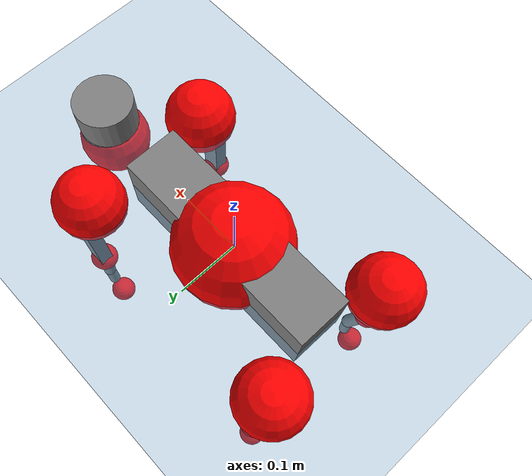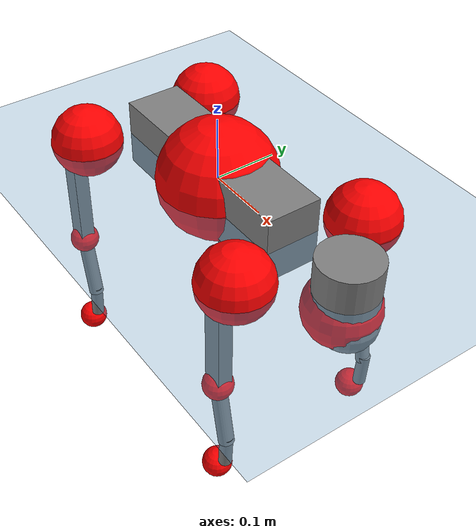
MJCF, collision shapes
<mujoco model="go2">
  <compiler angle="radian" assetdir="assets" balanceinertia="true" inertiafromgeom="false"/>

  <option timestep="0.005" density="1.2" viscosity="2e-05"/>

  <size nkey="1"/>

  <visual>
    <quality shadowsize="8192"/>
    <map shadowclip="0.5"/>
  </visual>

  <default>
    <default class="/">
      <geom contype="0" conaffinity="0" group="1" solref="-1000 -80"/>
      <site size="0.01 0.005 0.005" group="5"/>
      <general forcelimited="true" biastype="affine" gainprm="20" biasprm="0 -20 -0.5"/>
      <default class="go2">
        <joint armature="0.01" damping="0.01" frictionloss="0.2"/>
        <geom condim="1" margin="0.001"/>
        <default class="visual">
          <geom type="mesh" group="2"/>
        </default>
        <default class="collision">
          <geom group="3"/>
          <default class="foot">
            <geom size="0.022 0 0" condim="6" priority="1" friction="0.8 0.02 0.01" solimp="0.015 1 0.022"/>
          </default>
        </default>
        <default class="reward_collision_sphere">
          <geom group="5" rgba="1 0 0 1"/>
        </default>
      </default>
    </default>
  </default>

  <asset>
    <texture type="skybox" colorspace="auto" name="//unnamed_texture_0" builtin="gradient" rgb1="0.95 0.95 0.95" rgb2="0.95 0.95 0.95" width="100" height="600"/>
    <texture type="2d" colorspace="auto" name="texplane" builtin="checker" rgb1="0.345 0.575 0.748" rgb2="0.345 0.575 0.748" markrgb="1 1 1" width="512" height="512"/>
    <material name="MatPlane" class="/" texture="texplane" texuniform="true" texrepeat="2 2" specular="0.9"/>
    <material name="metal" class="/" rgba="0.9 0.95 0.95 1"/>
    <material name="black" class="/" rgba="0 0 0 1"/>
    <material name="white" class="/"/>
    <material name="gray" class="/" rgba="0.671705 0.692426 0.77427 1"/>
    <mesh name="base_0" class="/" file="base_0.obj"/>
    <mesh name="base_1" class="/" file="base_1.obj"/>
    <mesh name="base_2" class="/" file="base_2.obj"/>
    <mesh name="base_3" class="/" file="base_3.obj"/>
    <mesh name="base_4" class="/" file="base_4.obj"/>
    <mesh name="hip_0" class="/" file="hip_0.obj"/>
    <mesh name="hip_1" class="/" file="hip_1.obj"/>
    <mesh name="thigh_0" class="/" file="thigh_0.obj"/>
    <mesh name="thigh_1" class="/" file="thigh_1.obj"/>
    <mesh name="thigh_mirror_0" class="/" file="thigh_mirror_0.obj"/>
    <mesh name="thigh_mirror_1" class="/" file="thigh_mirror_1.obj"/>
    <mesh name="calf_0" class="/" file="calf_0.obj"/>
    <mesh name="calf_1" class="/" file="calf_1.obj"/>
    <mesh name="calf_mirror_0" class="/" file="calf_mirror_0.obj"/>
    <mesh name="calf_mirror_1" class="/" file="calf_mirror_1.obj"/>
    <mesh name="foot" class="/" file="foot.obj"/>
  </asset>

  <worldbody>
    <geom name="floor" class="/" size="100 100 0.125" type="plane" group="0" material="MatPlane"/>
    <light name="toplight_shadow" class="/" pos="0 0 5" dir="0.0990148 0.0990148 -0.990148" type="directional" ambient="0.04 0.04 0.04" diffuse="0.55 0.55 0.55" specular="0.12 0.12 0.12"/>
    <light name="toplight_fill" class="/" pos="0 0 5" dir="0.0990148 0.0990148 -0.990148" type="directional" castshadow="false" ambient="0.04 0.04 0.04" diffuse="0.3 0.3 0.3" specular="0.08 0.08 0.08"/>
    <body name="trunk" childclass="go2" pos="0.0014398 0.000112949 0.000941203" quat="1 -0.000382828 -0.000249116 4.86576e-05">
      <inertial pos="0.0198174 -0.00114473 -0.00503083" quat="0.000495202 0.711944 -0.00163125 0.702234" mass="5.42016" diaginertia="0.107272 0.0732226 0.0103929"/>
      <joint name="//unnamed_joint_0" type="free" armature="0" damping="0" frictionloss="0"/>
      <geom name="//unnamed_geom_1" class="visual" material="black" mesh="base_0"/>
      <geom name="//unnamed_geom_2" class="visual" material="black" mesh="base_1"/>
      <geom name="//unnamed_geom_3" class="visual" material="black" mesh="base_2"/>
      <geom name="//unnamed_geom_4" class="visual" material="white" mesh="base_3"/>
      <geom name="//unnamed_geom_5" class="visual" material="gray" mesh="base_4"/>
      <geom name="trunk_1" class="collision" size="0.175085 0.0435153 0.0530561" type="box"/>
      <geom name="trunk_2" class="collision" size="0.0465404 0.0418864" pos="0.285598 0 0.00845467" type="cylinder"/>
      <geom name="trunk_3" class="collision" size="0.043748" pos="0.293615 0 -0.050728"/>
      <geom name="//unnamed_geom_9" class="reward_collision_sphere" size="0.0930808"/>
      <geom name="//unnamed_geom_10" class="reward_collision_sphere" size="0.0558485" pos="0.280587 0 -0.038046"/>
      <site name="imu" pos="-0.0257559 -0.00453725 0.0394908" size="0.00930808"/>
      <camera name="track" pos="0 -1.88972 0" quat="0.707107 0.707107 0 0" mode="trackcom"/>
      <camera name="ego_camera" pos="0.312655 0 0.038046" quat="-0.5 -0.5 0.5 0.5"/>
      <body name="FL_hip" pos="0.192998 0.0435478 0.00112364" quat="1 -0.000478148 8.88879e-05 -2.36684e-05">
        <inertial pos="-0.00522034 0.00241927 -0.000858861" quat="0.497745 0.499556 0.505084 0.497578" mass="0.555242" diaginertia="0.000913121 0.000445203 0.000207075"/>
        <joint name="FL_hip_joint" pos="0 0 0" axis="0.999923 -0.0108729 -0.0060239" stiffness="0.00415278" range="-1.02313 1.04221" armature="0.00925501" damping="0" frictionloss="0.184795"/>
        <geom name="//unnamed_geom_11" class="visual" material="metal" mesh="hip_0"/>
        <geom name="//unnamed_geom_12" class="visual" material="gray" mesh="hip_1"/>
        <geom name="//unnamed_geom_13" class="collision" size="0.0428172 0.0186162" pos="0 0.0755887 0" quat="0.707107 0.707107 0 0" type="cylinder"/>
        <geom name="//unnamed_geom_14" class="reward_collision_sphere" size="0.0558485" pos="0 0.0661401 0"/>
        <body name="FL_thigh" pos="-0.00146417 0.0897125 0.00158229" quat="1 1.62004e-05 -6.1164e-05 8.13461e-05">
          <inertial pos="-0.00433167 -0.0202712 -0.0283234" quat="0.829569 0.0848241 -0.0199517 0.551563" mass="0.934952" diaginertia="0.00596321 0.00441109 0.000388521"/>
          <joint name="FL_thigh_joint" pos="0 0 0" axis="0.00561555 0.999976 0.00414442" range="-1.58733 3.49111" armature="0.00957409" damping="0.0039292" frictionloss="0.191734"/>
          <geom name="//unnamed_geom_15" class="visual" material="metal" mesh="thigh_0"/>
          <geom name="//unnamed_geom_16" class="visual" material="gray" mesh="thigh_1"/>
          <geom name="//unnamed_geom_17" class="collision" size="0.0991311 0.0114024 0.0158237" pos="0 0 -0.0900423" quat="0.707107 0 0.707107 0" type="box"/>
          <body name="FL_calf" pos="-0.000260856 -0.00177737 -0.180372" quat="1 -0.000130123 -1.93947e-05 -0.000370836">
            <inertial pos="0.00620298 -0.000516609 -0.119519" quat="0.712444 0.0043451 -0.00514624 0.701696" mass="0.194739" diaginertia="0.00155069 0.00111413 2.33191e-05"/>
            <joint name="FL_calf_joint" pos="0 0 0" axis="0.000209714 0.999997 0.00252739" range="-2.74286 -0.838808" armature="0.00890929" damping="0.00152795" frictionloss="0.177603"/>
            <geom name="//unnamed_geom_18" class="visual" material="gray" mesh="calf_0"/>
            <geom name="//unnamed_geom_19" class="visual" material="black" mesh="calf_1"/>
            <geom name="FL_calf0" class="collision" size="0.0111697 0.0558485" pos="0.00801679 0 -0.050728" quat="0.994493 0 -0.104807 0" type="cylinder"/>
            <geom name="//unnamed_geom_21" class="collision" size="0.0102389 0.0302513" pos="0.020042 0 -0.125129" quat="0.999688 0 0.0249974 0" type="cylinder"/>
            <geom name="//unnamed_geom_22" class="visual" pos="0 0 -0.180085" quat="1 0 0 0" material="black" mesh="foot"/>
            <geom name="FL_foot" class="foot" size="0.0172224" pos="-0.0020042 0 -0.180085"/>
            <geom name="//unnamed_geom_24" class="reward_collision_sphere" size="0.0232702"/>
            <geom name="//unnamed_geom_25" class="reward_collision_sphere" size="0.0232702" pos="-0.0020042 0 -0.180085"/>
            <site name="FL_foot" class="foot" pos="-0.0020042 0 -0.180085" size="0.00930808"/>
          </body>
        </body>
      </body>
      <body name="FR_hip" pos="0.194976 -0.0436273 -0.00105539" quat="1 1.42395e-05 -2.31546e-05 -5.37348e-05">
        <inertial pos="-0.00612219 -0.00229571 -0.000232016" quat="0.498719 0.504809 0.498594 0.497846" mass="0.546481" diaginertia="0.000905413 0.00045354 0.000211333"/>
        <joint name="FR_hip_joint" pos="0 0 0" axis="0.999999 -0.00102787 0.000461891" stiffness="0.00547201" range="-1.06135 1.05097" armature="0.00920348" damping="0.0156378" frictionloss="0.182974"/>
        <geom name="//unnamed_geom_26" class="visual" pos="0 8.65856e-10 3.71383e-08" quat="4.63268e-05 1 0 0" material="metal" mesh="hip_0"/>
        <geom name="//unnamed_geom_27" class="visual" pos="0 1.40366e-09 -9.18573e-08" quat="4.63268e-05 1 0 0" material="gray" mesh="hip_1"/>
        <geom name="//unnamed_geom_28" class="collision" size="0.0428172 0.0186162" pos="0 -0.0755887 0" quat="0.707107 0.707107 0 0" type="cylinder"/>
        <geom name="//unnamed_geom_29" class="reward_collision_sphere" size="0.0558485" pos="0 -0.0661401 0"/>
        <body name="FR_thigh" pos="0.000551078 -0.0919028 0.000361314" quat="1 -1.8301e-05 0.000126806 -1.51335e-05">
          <inertial pos="-0.00453926 0.021294 -0.0276113" quat="0.550919 -0.0182951 0.0823664 0.830283" mass="0.931507" diaginertia="0.00607438 0.00447564 0.000385359"/>
          <joint name="FR_thigh_joint" pos="0 0 0" axis="-0.00364849 -0.999991 -0.00205251" stiffness="0.000932543" range="-3.5013 1.5714" armature="0.00924371" damping="0.0128825" frictionloss="0.177816"/>
          <geom name="//unnamed_geom_30" class="visual" material="metal" mesh="thigh_mirror_0"/>
          <geom name="//unnamed_geom_31" class="visual" material="gray" mesh="thigh_mirror_1"/>
          <geom name="//unnamed_geom_32" class="collision" size="0.0991311 0.0114024 0.0158237" pos="0 0 -0.0900423" quat="0.707107 0 0.707107 0" type="box"/>
          <body name="FR_calf" pos="-0.000271217 -0.00085766 -0.178894" quat="1 1.37216e-05 -5.03293e-05 -2.21067e-05">
            <inertial pos="0.00625229 0.000625328 -0.119784" quat="0.705364 -0.00374344 -0.000380141 0.708835" mass="0.195256" diaginertia="0.0015026 0.00110053 2.3034e-05"/>
            <joint name="FR_calf_joint" pos="0 0 0" axis="0.00461336 -0.999985 -0.00284379" range="0.83381 2.71544" armature="0.00956123" damping="0.00925664" frictionloss="0.193892"/>
            <geom name="//unnamed_geom_33" class="visual" material="gray" mesh="calf_mirror_0"/>
            <geom name="//unnamed_geom_34" class="visual" material="black" mesh="calf_mirror_1"/>
            <geom name="FR_calf0" class="collision" size="0.0121005 0.0558485" pos="0.010021 0 -0.050728" quat="0.995004 0 -0.0998334 0" type="cylinder"/>
            <geom name="//unnamed_geom_36" class="collision" size="0.0102389 0.0302513" pos="0.020042 0 -0.125129" quat="0.999688 0 0.0249974 0" type="cylinder"/>
            <geom name="//unnamed_geom_37" class="visual" pos="0 0 -0.180085" quat="1 0 0 0" material="black" mesh="foot"/>
            <geom name="FR_foot" class="foot" size="0.022959" pos="-0.0020042 0 -0.180085"/>
            <geom name="//unnamed_geom_39" class="reward_collision_sphere" size="0.0232702"/>
            <geom name="//unnamed_geom_40" class="reward_collision_sphere" size="0.0232702" pos="-0.0020042 0 -0.180085"/>
            <site name="FR_foot" class="foot" pos="-0.0020042 0 -0.180085" size="0.00930808"/>
          </body>
        </body>
      </body>
      <body name="RL_hip" pos="-0.193513 0.0440051 1.172e-05" quat="1 2.8532e-07 2.85197e-07 -2.81732e-07">
        <inertial pos="0.00479607 0.00335183 0.000390116" quat="0.499317 0.502852 0.497894 0.499924" mass="0.556085" diaginertia="0.000898229 0.000451858 0.000210258"/>
        <joint name="RL_hip_joint" pos="0 0 0" axis="-0.999802 -0.00622984 0.0189175" range="-1.0562 1.06231" armature="0.00922489" damping="0.0174318" frictionloss="0.192071"/>
        <geom name="//unnamed_geom_41" class="visual" pos="-1.3645e-09 0 -2.67474e-07" quat="4.63268e-05 0 1 0" material="metal" mesh="hip_0"/>
        <geom name="//unnamed_geom_42" class="visual" pos="-2.21202e-09 0 -2.37211e-07" quat="4.63268e-05 0 1 0" material="gray" mesh="hip_1"/>
        <geom name="//unnamed_geom_43" class="collision" size="0.0428172 0.0186162" pos="0 0.0755887 0" quat="0.707107 0.707107 0 0" type="cylinder"/>
        <geom name="//unnamed_geom_44" class="reward_collision_sphere" size="0.0558485" pos="0 0.0661401 0"/>
        <body name="RL_thigh" pos="0.000111369 0.0894172 0.000320799" quat="1 -6.92957e-05 2.17256e-05 0.000207406">
          <inertial pos="-0.00367081 -0.0206781 -0.0272901" quat="0.828806 0.087681 -0.0201211 0.552256" mass="0.941414" diaginertia="0.0059832 0.00442313 0.000376354"/>
          <joint name="RL_thigh_joint" pos="0 0 0" axis="8.64252e-05 0.999999 0.00131813" stiffness="0.00182382" range="-0.525817 4.53532" armature="0.0092036" damping="0.0129488" frictionloss="0.185751"/>
          <geom name="//unnamed_geom_45" class="visual" material="metal" mesh="thigh_0"/>
          <geom name="//unnamed_geom_46" class="visual" material="gray" mesh="thigh_1"/>
          <geom name="//unnamed_geom_47" class="collision" size="0.0991311 0.0114024 0.0158237" pos="0 0 -0.0900423" quat="0.707107 0 0.707107 0" type="box"/>
          <body name="RL_calf" pos="0.000117096 -0.000405051 -0.181272" quat="1 0.000184297 -0.000132827 -6.57848e-05">
            <inertial pos="0.00686598 0.00087975 -0.119698" quat="0.710446 0.00569525 -0.0065623 0.703698" mass="0.19337" diaginertia="0.00151342 0.00109195 2.24297e-05"/>
            <joint name="RL_calf_joint" pos="0 0 0" axis="-0.00467244 0.999984 -0.00331234" range="-2.72436 -0.854405" armature="0.00892037" damping="0.00771982" frictionloss="0.197512"/>
            <geom name="//unnamed_geom_48" class="visual" material="gray" mesh="calf_0"/>
            <geom name="//unnamed_geom_49" class="visual" material="black" mesh="calf_1"/>
            <geom name="RL_calf0" class="collision" size="0.0121005 0.0558485" pos="0.010021 0 -0.050728" quat="0.995004 0 -0.0998334 0" type="cylinder"/>
            <geom name="//unnamed_geom_51" class="collision" size="0.0102389 0.0302513" pos="0.020042 0 -0.125129" quat="0.999688 0 0.0249974 0" type="cylinder"/>
            <geom name="//unnamed_geom_52" class="visual" pos="0 0 -0.180085" quat="1 0 0 0" material="black" mesh="foot"/>
            <geom name="RL_foot" class="foot" size="0.0175285" pos="-0.0020042 0 -0.180085"/>
            <geom name="//unnamed_geom_54" class="reward_collision_sphere" size="0.0232702"/>
            <geom name="//unnamed_geom_55" class="reward_collision_sphere" size="0.0232702" pos="-0.0020042 0 -0.180085"/>
            <site name="RL_foot" class="foot" pos="-0.0020042 0 -0.180085" size="0.00930808"/>
          </body>
        </body>
      </body>
      <body name="RR_hip" pos="-0.194498 -0.0433273 -9.26024e-05" quat="1 -0.000543663 -0.000164451 0.000383719">
        <inertial pos="0.00642344 -0.00211501 -0.00105785" quat="0.49812 0.496213 0.498369 0.507225" mass="0.545676" diaginertia="0.000891863 0.00044964 0.000206731"/>
        <joint name="RR_hip_joint" pos="0 0 0" axis="-0.99997 0.00720937 -0.00275274" range="-1.06164 1.05597" armature="0.00975238" damping="0.0091357" frictionloss="0.190514"/>
        <geom name="//unnamed_geom_56" class="visual" pos="1.36252e-09 8.65856e-10 -3.04612e-07" quat="2.14617e-09 4.63268e-05 4.63268e-05 -1" material="metal" mesh="hip_0"/>
        <geom name="//unnamed_geom_57" class="visual" pos="2.21692e-09 1.40366e-09 -1.45354e-07" quat="2.14617e-09 4.63268e-05 4.63268e-05 -1" material="gray" mesh="hip_1"/>
        <geom name="//unnamed_geom_58" class="collision" size="0.0428172 0.0186162" pos="0 -0.0755887 0" quat="0.707107 0.707107 0 0" type="cylinder"/>
        <geom name="//unnamed_geom_59" class="reward_collision_sphere" size="0.0558485" pos="0 -0.0661401 0"/>
        <body name="RR_thigh" pos="-0.000188301 -0.0908003 -0.00269577" quat="1 2.2226e-05 1.18773e-06 1.87543e-05">
          <inertial pos="-0.00407844 0.0212819 -0.0277006" quat="0.551947 -0.0193227 0.0849083 0.82932" mass="0.925288" diaginertia="0.00597935 0.00436851 0.000379627"/>
          <joint name="RR_thigh_joint" pos="0 0 0" axis="-0.00689265 -0.999972 0.00274385" range="-4.54026 0.53431" armature="0.00919598" damping="0.0129654" frictionloss="0.190344"/>
          <geom name="//unnamed_geom_60" class="visual" material="metal" mesh="thigh_mirror_0"/>
          <geom name="//unnamed_geom_61" class="visual" material="gray" mesh="thigh_mirror_1"/>
          <geom name="//unnamed_geom_62" class="collision" size="0.0991311 0.0114024 0.0158237" pos="0 0 -0.0900423" quat="0.707107 0 0.707107 0" type="box"/>
          <body name="RR_calf" pos="0.000327693 0.000471929 -0.181481" quat="1 -8.42249e-05 -9.78193e-05 -0.000112839">
            <inertial pos="0.00642051 0.00108504 -0.119814" quat="0.703006 -0.0049567 -0.00293831 0.711161" mass="0.195258" diaginertia="0.00149527 0.00110167 2.30495e-05"/>
            <joint name="RR_calf_joint" pos="0 0 0" axis="0.000103463 -0.999965 0.00838988" range="0.839372 2.72185" armature="0.00933068" damping="0.0126668" frictionloss="0.187088"/>
            <geom name="//unnamed_geom_63" class="visual" material="gray" mesh="calf_mirror_0"/>
            <geom name="//unnamed_geom_64" class="visual" material="black" mesh="calf_mirror_1"/>
            <geom name="RR_calf0" class="collision" size="0.0121005 0.0558485" pos="0.010021 0 -0.050728" quat="0.995004 0 -0.0998334 0" type="cylinder"/>
            <geom name="//unnamed_geom_66" class="collision" size="0.0102389 0.0302513" pos="0.020042 0 -0.125129" quat="0.999688 0 0.0249974 0" type="cylinder"/>
            <geom name="//unnamed_geom_67" class="visual" pos="0 0 -0.180085" quat="1 0 0 0" material="black" mesh="foot"/>
            <geom name="RR_foot" class="foot" size="0.0218709" pos="-0.0020042 0 -0.180085"/>
            <geom name="//unnamed_geom_69" class="reward_collision_sphere" size="0.0232702"/>
            <geom name="//unnamed_geom_70" class="reward_collision_sphere" size="0.0232702" pos="-0.0020042 0 -0.180085"/>
            <site name="RR_foot" class="foot" pos="-0.0020042 0 -0.180085" size="0.00930808"/>
          </body>
        </body>
      </body>
    </body>
  </worldbody>

  <contact>
    <pair class="/" geom1="floor" geom2="FL_foot" name="//unnamed_contact_0"/>
    <pair class="/" geom1="floor" geom2="FR_foot" name="//unnamed_contact_1"/>
    <pair class="/" geom1="floor" geom2="RL_foot" name="//unnamed_contact_2"/>
    <pair class="/" geom1="floor" geom2="RR_foot" name="//unnamed_contact_3"/>
  </contact>

  <actuator>
    <general name="FL_hip" class="/" joint="FL_hip_joint" forcerange="-21.9338 21.9338" gainprm="18.3156" biasprm="0 -18.3156 -0.468282"/>
    <general name="FL_thigh" class="/" joint="FL_thigh_joint" forcerange="-22.8409 22.8409" gainprm="18.3156" biasprm="0 -18.3156 -0.468282"/>
    <general name="FL_calf" class="/" joint="FL_calf_joint" forcerange="-41.3201 41.3201" gainprm="18.3156" biasprm="0 -18.3156 -0.468282"/>
    <general name="FR_hip" class="/" joint="FR_hip_joint" forcerange="-22.2212 22.2212" gainprm="18.3156" biasprm="0 -18.3156 -0.468282"/>
    <general name="FR_thigh" class="/" joint="FR_thigh_joint" forcerange="-21.273 21.273" gainprm="18.3156" biasprm="0 -18.3156 -0.468282"/>
    <general name="FR_calf" class="/" joint="FR_calf_joint" forcerange="-42.2051 42.2051" gainprm="18.3156" biasprm="0 -18.3156 -0.468282"/>
    <general name="RL_hip" class="/" joint="RL_hip_joint" forcerange="-23.0505 23.0505" gainprm="18.3156" biasprm="0 -18.3156 -0.468282"/>
    <general name="RL_thigh" class="/" joint="RL_thigh_joint" forcerange="-22.8576 22.8576" gainprm="18.3156" biasprm="0 -18.3156 -0.468282"/>
    <general name="RL_calf" class="/" joint="RL_calf_joint" forcerange="-40.7265 40.7265" gainprm="18.3156" biasprm="0 -18.3156 -0.468282"/>
    <general name="RR_hip" class="/" joint="RR_hip_joint" forcerange="-22.4733 22.4733" gainprm="18.3156" biasprm="0 -18.3156 -0.468282"/>
    <general name="RR_thigh" class="/" joint="RR_thigh_joint" forcerange="-22.8227 22.8227" gainprm="18.3156" biasprm="0 -18.3156 -0.468282"/>
    <general name="RR_calf" class="/" joint="RR_calf_joint" forcerange="-43.0733 43.0733" gainprm="18.3156" biasprm="0 -18.3156 -0.468282"/>
  </actuator>

  <sensor>
    <gyro site="imu" name="imu_angular_velocity"/>
    <velocimeter site="imu" name="imu_linear_velocity"/>
    <framelinvel objtype="site" objname="FL_foot" name="FL_foot_global_linear_velocity"/>
    <framelinvel objtype="site" objname="FR_foot" name="FR_foot_global_linear_velocity"/>
    <framelinvel objtype="site" objname="RL_foot" name="RL_foot_global_linear_velocity"/>
    <framelinvel objtype="site" objname="RR_foot" name="RR_foot_global_linear_velocity"/>
  </sensor>

  <keyframe>
    <key name="home" qpos="0 0 0.325 1 0 0 0 0.1 0.8 -1.5 -0.1 -0.8 1.5 -0.1 0.8 -1.5 0.1 -0.8 1.5"/>
  </keyframe>
</mujoco>
